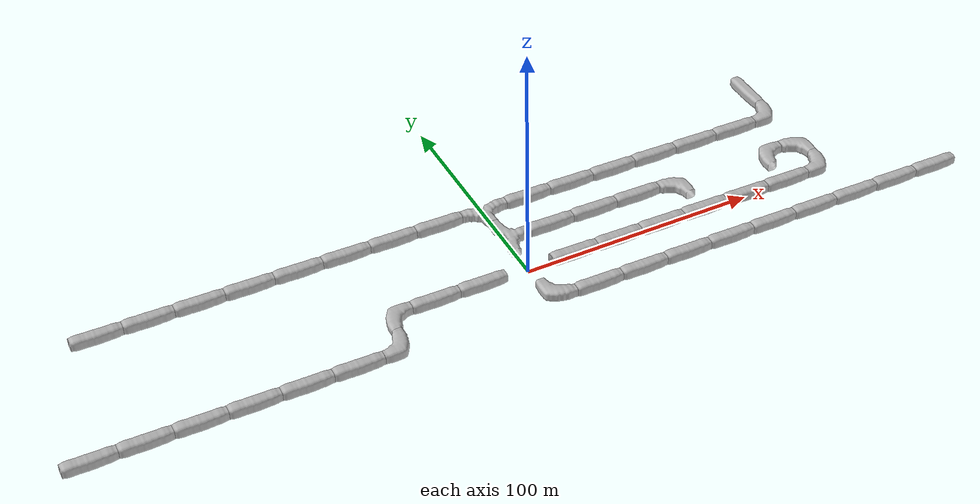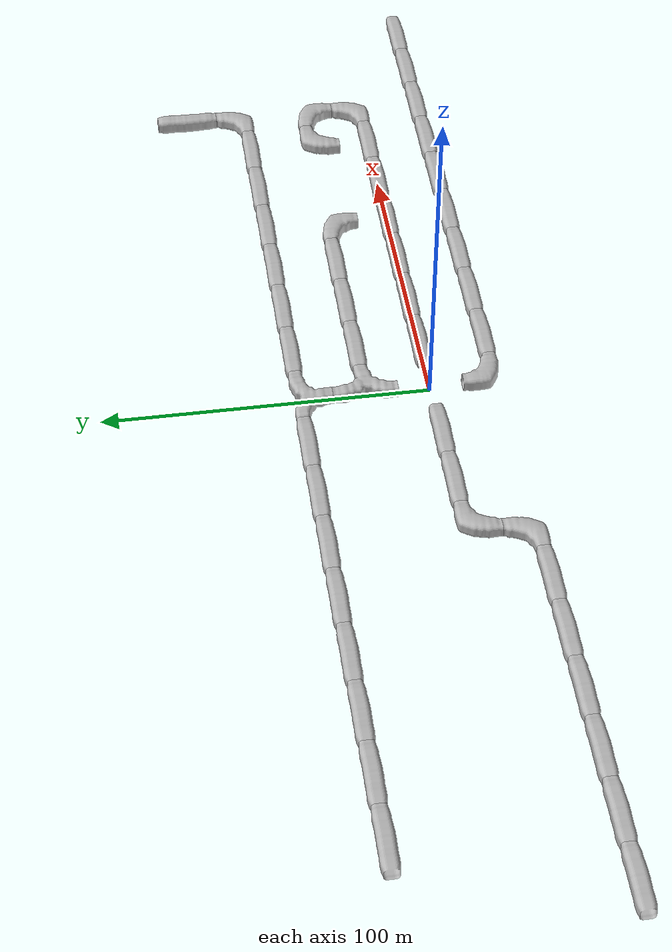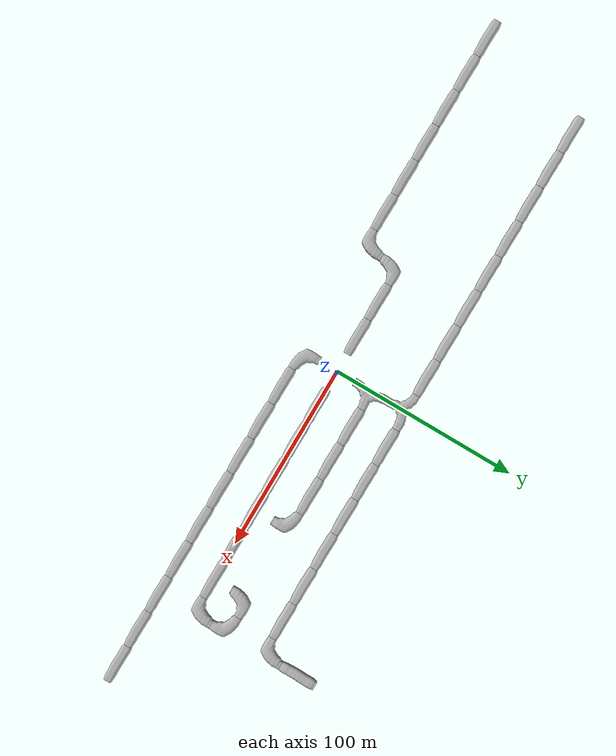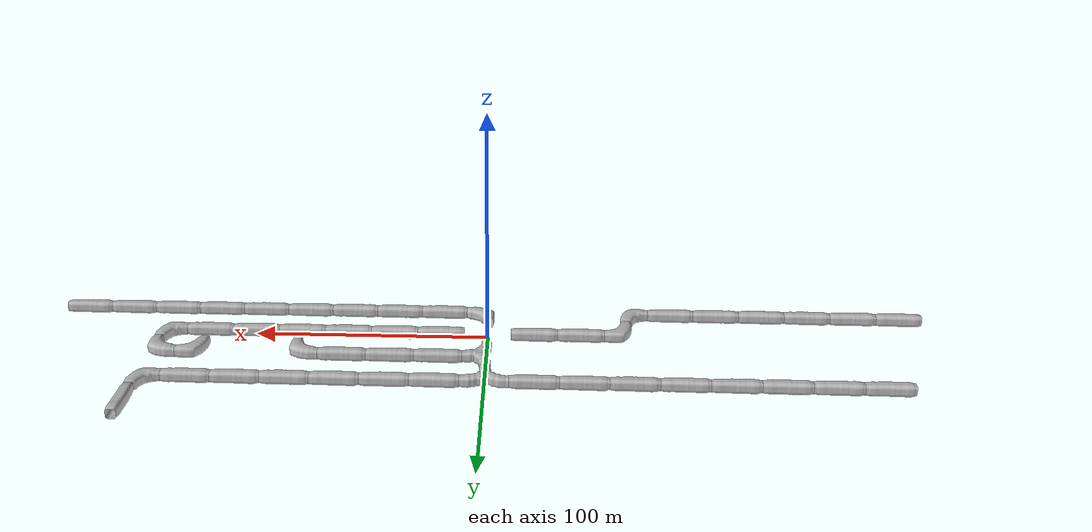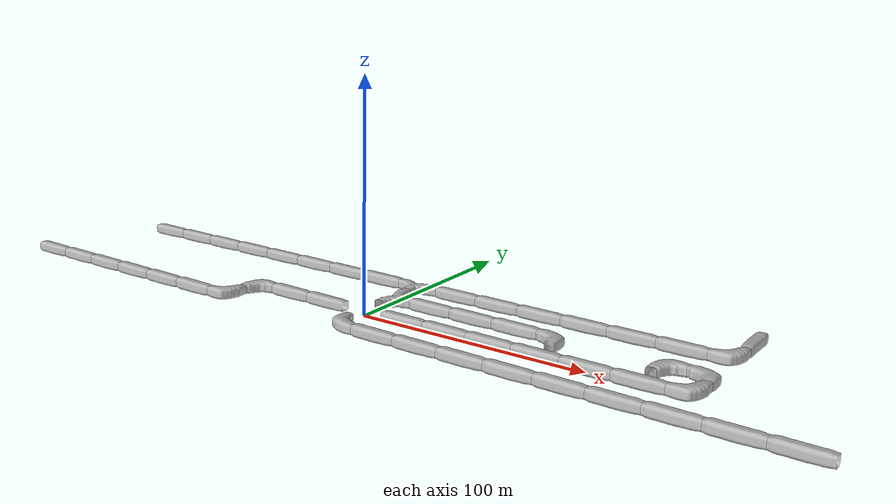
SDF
<sdf version="1.6">
 <world name="cave_1000_4">
  <include>
   <static>true</static>
   <name>cave_1_0</name>
   <pose>20 0 0 0 0 1.5707963267948966</pose>
   <uri>model://cave_straight_20m</uri>
  </include>
  <include>
   <static>true</static>
   <name>cave_2_0</name>
   <pose>40 0 0 0 0 1.5707963267948966</pose>
   <uri>model://cave_straight_20m</uri>
  </include>
  <include>
   <static>true</static>
   <name>cave_3_0</name>
   <pose>60 0 0 0 0 1.5707963267948966</pose>
   <uri>model://cave_straight_20m</uri>
  </include>
  <include>
   <static>true</static>
   <name>cave_4_0</name>
   <pose>80 0 0 0 0 1.5707963267948966</pose>
   <uri>model://cave_straight_20m</uri>
  </include>
  <include>
   <static>true</static>
   <name>cave_5_0</name>
   <pose>100 0 0 0 0 1.5707963267948966</pose>
   <uri>model://cave_straight_20m</uri>
  </include>
  <include>
   <static>true</static>
   <name>cave_6_0</name>
   <pose>120 0 0 0 0 1.5707963267948966</pose>
   <uri>model://cave_straight_20m</uri>
  </include>
  <include>
   <static>true</static>
   <name>cave_7_0</name>
   <pose>140 0 0 0 0 1.5707963267948966</pose>
   <uri>model://cave_L_20m</uri>
  </include>
  <include>
   <static>true</static>
   <name>cave_7_1</name>
   <pose>140 20 0 0 0 3.141592653589793</pose>
   <uri>model://cave_L_20m</uri>
  </include>
  <include>
   <static>true</static>
   <name>cave_6_1</name>
   <pose>120 20 0 0 0 -1.5707963267948966</pose>
   <uri>model://cave_L_20m</uri>
  </include>
  <include>
   <static>true</static>
   <name>cave_0_-1</name>
   <pose>0 -20 0 0 0 0.0</pose>
   <uri>model://cave_L_20m</uri>
  </include>
  <include>
   <static>true</static>
   <name>cave_1_-1</name>
   <pose>20 -20 0 0 0 1.5707963267948966</pose>
   <uri>model://cave_straight_20m</uri>
  </include>
  <include>
   <static>true</static>
   <name>cave_2_-1</name>
   <pose>40 -20 0 0 0 1.5707963267948966</pose>
   <uri>model://cave_straight_20m</uri>
  </include>
  <include>
   <static>true</static>
   <name>cave_3_-1</name>
   <pose>60 -20 0 0 0 1.5707963267948966</pose>
   <uri>model://cave_straight_20m</uri>
  </include>
  <include>
   <static>true</static>
   <name>cave_4_-1</name>
   <pose>80 -20 0 0 0 1.5707963267948966</pose>
   <uri>model://cave_straight_20m</uri>
  </include>
  <include>
   <static>true</static>
   <name>cave_5_-1</name>
   <pose>100 -20 0 0 0 1.5707963267948966</pose>
   <uri>model://cave_straight_20m</uri>
  </include>
  <include>
   <static>true</static>
   <name>cave_6_-1</name>
   <pose>120 -20 0 0 0 1.5707963267948966</pose>
   <uri>model://cave_straight_20m</uri>
  </include>
  <include>
   <static>true</static>
   <name>cave_7_-1</name>
   <pose>140 -20 0 0 0 1.5707963267948966</pose>
   <uri>model://cave_straight_20m</uri>
  </include>
  <include>
   <static>true</static>
   <name>cave_8_-1</name>
   <pose>160 -20 0 0 0 1.5707963267948966</pose>
   <uri>model://cave_straight_20m</uri>
  </include>
  <include>
   <static>true</static>
   <name>cave_9_-1</name>
   <pose>180 -20 0 0 0 1.5707963267948966</pose>
   <uri>model://cave_straight_20m</uri>
  </include>
  <include>
   <static>true</static>
   <name>cave_-1_0</name>
   <pose>-20 0 0 0 0 1.5707963267948966</pose>
   <uri>model://cave_straight_20m</uri>
  </include>
  <include>
   <static>true</static>
   <name>cave_-2_0</name>
   <pose>-40 0 0 0 0 1.5707963267948966</pose>
   <uri>model://cave_straight_20m</uri>
  </include>
  <include>
   <static>true</static>
   <name>cave_-3_0</name>
   <pose>-60 0 0 0 0 -1.5707963267948966</pose>
   <uri>model://cave_L_20m</uri>
  </include>
  <include>
   <static>true</static>
   <name>cave_-3_-1</name>
   <pose>-60 -20 0 0 0 1.5707963267948966</pose>
   <uri>model://cave_L_20m</uri>
  </include>
  <include>
   <static>true</static>
   <name>cave_-4_-1</name>
   <pose>-80 -20 0 0 0 1.5707963267948966</pose>
   <uri>model://cave_straight_20m</uri>
  </include>
  <include>
   <static>true</static>
   <name>cave_-5_-1</name>
   <pose>-100 -20 0 0 0 1.5707963267948966</pose>
   <uri>model://cave_straight_20m</uri>
  </include>
  <include>
   <static>true</static>
   <name>cave_-6_-1</name>
   <pose>-120 -20 0 0 0 1.5707963267948966</pose>
   <uri>model://cave_straight_20m</uri>
  </include>
  <include>
   <static>true</static>
   <name>cave_-7_-1</name>
   <pose>-140 -20 0 0 0 1.5707963267948966</pose>
   <uri>model://cave_straight_20m</uri>
  </include>
  <include>
   <static>true</static>
   <name>cave_-8_-1</name>
   <pose>-160 -20 0 0 0 1.5707963267948966</pose>
   <uri>model://cave_straight_20m</uri>
  </include>
  <include>
   <static>true</static>
   <name>cave_-9_-1</name>
   <pose>-180 -20 0 0 0 1.5707963267948966</pose>
   <uri>model://cave_straight_20m</uri>
  </include>
  <include>
   <static>true</static>
   <name>cave_0_1</name>
   <pose>0 20 0 0 0 -1.5707963267948966</pose>
   <uri>model://cave_3way_20m</uri>
  </include>
  <include>
   <static>true</static>
   <name>cave_1_1</name>
   <pose>20 20 0 0 0 1.5707963267948966</pose>
   <uri>model://cave_straight_20m</uri>
  </include>
  <include>
   <static>true</static>
   <name>cave_2_1</name>
   <pose>40 20 0 0 0 1.5707963267948966</pose>
   <uri>model://cave_straight_20m</uri>
  </include>
  <include>
   <static>true</static>
   <name>cave_3_1</name>
   <pose>60 20 0 0 0 1.5707963267948966</pose>
   <uri>model://cave_straight_20m</uri>
  </include>
  <include>
   <static>true</static>
   <name>cave_4_1</name>
   <pose>80 20 0 0 0 3.141592653589793</pose>
   <uri>model://cave_L_20m</uri>
  </include>
  <include>
   <static>true</static>
   <name>cave_0_2</name>
   <pose>0 40 0 0 0 3.141592653589793</pose>
   <uri>model://cave_3way_20m</uri>
  </include>
  <include>
   <static>true</static>
   <name>cave_1_2</name>
   <pose>20 40 0 0 0 1.5707963267948966</pose>
   <uri>model://cave_straight_20m</uri>
  </include>
  <include>
   <static>true</static>
   <name>cave_2_2</name>
   <pose>40 40 0 0 0 1.5707963267948966</pose>
   <uri>model://cave_straight_20m</uri>
  </include>
  <include>
   <static>true</static>
   <name>cave_3_2</name>
   <pose>60 40 0 0 0 1.5707963267948966</pose>
   <uri>model://cave_straight_20m</uri>
  </include>
  <include>
   <static>true</static>
   <name>cave_4_2</name>
   <pose>80 40 0 0 0 1.5707963267948966</pose>
   <uri>model://cave_straight_20m</uri>
  </include>
  <include>
   <static>true</static>
   <name>cave_5_2</name>
   <pose>100 40 0 0 0 1.5707963267948966</pose>
   <uri>model://cave_straight_20m</uri>
  </include>
  <include>
   <static>true</static>
   <name>cave_6_2</name>
   <pose>120 40 0 0 0 1.5707963267948966</pose>
   <uri>model://cave_straight_20m</uri>
  </include>
  <include>
   <static>true</static>
   <name>cave_7_2</name>
   <pose>140 40 0 0 0 1.5707963267948966</pose>
   <uri>model://cave_L_20m</uri>
  </include>
  <include>
   <static>true</static>
   <name>cave_7_3</name>
   <pose>140 60 0 0 0 0.0</pose>
   <uri>model://cave_straight_20m</uri>
  </include>
  <include>
   <static>true</static>
   <name>cave_-1_2</name>
   <pose>-20 40 0 0 0 1.5707963267948966</pose>
   <uri>model://cave_straight_20m</uri>
  </include>
  <include>
   <static>true</static>
   <name>cave_-2_2</name>
   <pose>-40 40 0 0 0 1.5707963267948966</pose>
   <uri>model://cave_straight_20m</uri>
  </include>
  <include>
   <static>true</static>
   <name>cave_-3_2</name>
   <pose>-60 40 0 0 0 1.5707963267948966</pose>
   <uri>model://cave_straight_20m</uri>
  </include>
  <include>
   <static>true</static>
   <name>cave_-4_2</name>
   <pose>-80 40 0 0 0 1.5707963267948966</pose>
   <uri>model://cave_straight_20m</uri>
  </include>
  <include>
   <static>true</static>
   <name>cave_-5_2</name>
   <pose>-100 40 0 0 0 1.5707963267948966</pose>
   <uri>model://cave_straight_20m</uri>
  </include>
  <include>
   <static>true</static>
   <name>cave_-6_2</name>
   <pose>-120 40 0 0 0 1.5707963267948966</pose>
   <uri>model://cave_straight_20m</uri>
  </include>
  <include>
   <static>true</static>
   <name>cave_-7_2</name>
   <pose>-140 40 0 0 0 1.5707963267948966</pose>
   <uri>model://cave_straight_20m</uri>
  </include>
  <include>
   <static>true</static>
   <name>cave_-8_2</name>
   <pose>-160 40 0 0 0 1.5707963267948966</pose>
   <uri>model://cave_straight_20m</uri>
  </include>
 </world>
</sdf>

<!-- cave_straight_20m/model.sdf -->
<sdf version="1.6">
  <model name="cave_straight_20m">
    <static>true</static>
    <link name="base">
      <pose>0 0 0 0 0 0</pose>
      <collision name="base_collision">
        <pose>0 0 0 0 0 0</pose>
        <geometry>
          <mesh>
            <uri>model://cave_straight_20m/meshes/cave_straight_20m.dae</uri>
          </mesh>
        </geometry>
        <surface>
          <contact>
             <collide_bitmask>0xffff</collide_bitmask>
          </contact>
          <friction>
            <ode>
              <mu>100</mu>
              <mu2>50</mu2>
            </ode>
          </friction>
        </surface>
      </collision>
      <visual name="base_visual">
        <pose>0 0 0 0 0 0</pose>
        <cast_shadows>false</cast_shadows>
        <geometry>
          <mesh>
            <uri>model://cave_straight_20m/meshes/cave_straight_20m.dae</uri>
          </mesh>
        </geometry>
      </visual>
    </link>
  </model>
</sdf>

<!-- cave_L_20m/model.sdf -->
<sdf version="1.6">
  <model name="cave_L_20m">
    <static>true</static>
    <link name="base">
      <pose>0 0 0 0 0 0</pose>
      <collision name="base_collision">
        <pose>0 0 0 0 0 0</pose>
        <geometry>
          <mesh>
            <uri>model://cave_L_20m/meshes/cave_L_20m.dae</uri>
          </mesh>
        </geometry>
        <surface>
          <contact>
             <collide_bitmask>0xffff</collide_bitmask>
          </contact>
          <friction>
            <ode>
              <mu>100</mu>
              <mu2>50</mu2>
            </ode>
          </friction>
        </surface>
      </collision>
      <visual name="base_visual">
        <pose>0 0 0 0 0 0</pose>
        <cast_shadows>false</cast_shadows>
        <geometry>
          <mesh>
            <uri>model://cave_L_20m/meshes/cave_L_20m.dae</uri>
          </mesh>
        </geometry>
      </visual>
    </link>
  </model>
</sdf>

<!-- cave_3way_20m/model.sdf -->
<sdf version="1.6">
  <model name="cave_3way_20m">
    <static>true</static>
    <link name="base">
      <pose>0 0 0 0 0 0</pose>
      <collision name="base_collision">
        <pose>0 0 0 0 0 0</pose>
        <geometry>
          <mesh>
            <uri>model://cave_3way_20m/meshes/cave_3way_20m.dae</uri>
          </mesh>
        </geometry>
        <surface>
          <contact>
             <collide_bitmask>0xffff</collide_bitmask>
          </contact>
          <friction>
            <ode>
              <mu>100</mu>
              <mu2>50</mu2>
            </ode>
          </friction>
        </surface>
      </collision>
      <visual name="base_visual">
        <cast_shadows>false</cast_shadows>
        <pose>0 0 0 0 0 0</pose>
        <geometry>
          <mesh>
            <uri>model://cave_3way_20m/meshes/cave_3way_20m.dae</uri>
          </mesh>
        </geometry>
      </visual>
    </link>
  </model>
</sdf>
